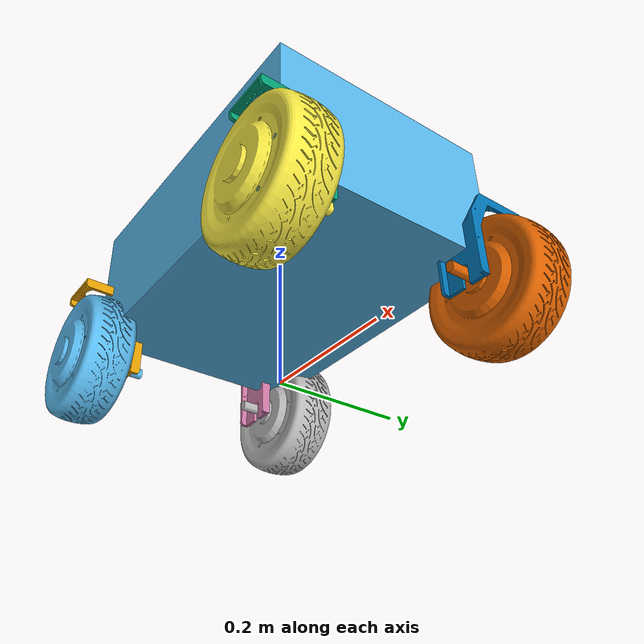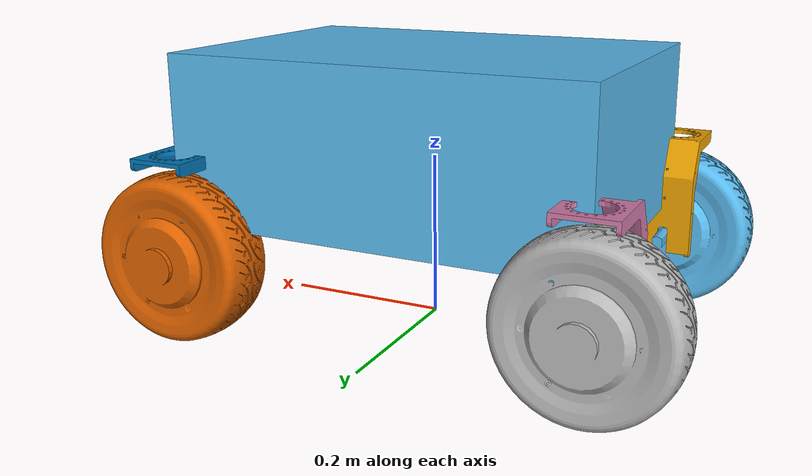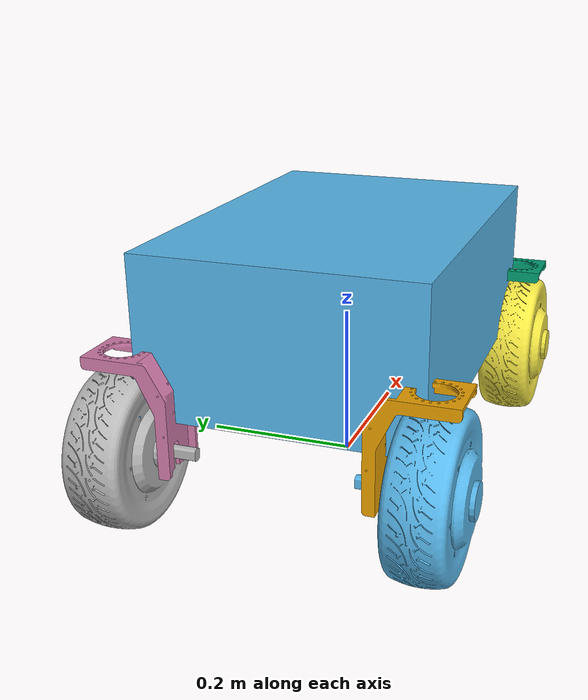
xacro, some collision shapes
<?xml version="1.0" ?>
<!-- |    Complete Robot Description for Agilex Aloha                                     | -->
<!-- |    This file includes the base robot structure and both arms                    | -->
<robot name="Agilex_Aloha_V1" xmlns:xacro="http://www.ros.org/wiki/xacro">

	<xacro:arg name="type" default="ranger_mini"/>

	<xacro:if value="${'$(arg type)' == 'ranger_mini'}">
		<xacro:include filename="$(find agilex_aloha_description)/xacro/base/ranger_mini.xacro"/>
	</xacro:if>

	<xacro:if value="${'$(arg type)' == 'tracer'}">
		<xacro:include filename="$(find agilex_aloha_description)/xacro/base/tracer.xacro"/>
	</xacro:if>

	<xacro:if value="${'$(arg type)' == 'tracer_v2'}">
		<xacro:include filename="$(find agilex_aloha_description)/xacro/base/tracer_v2.xacro"/>
	</xacro:if>

	<xacro:if value="${'$(arg type)' == 'body_v1'}">
		<link name="base_footprint"/>
		<link name="left_base_link"/>
		<link name="right_base_link"/>
		<xacro:include filename="$(find agilex_aloha_description)/xacro/body/v1.xacro"/>
	</xacro:if>

	<xacro:if value="${'$(arg type)' == 'body_v2'}">
		<link name="base_footprint"/>
		<link name="left_base_link"/>
		<link name="right_base_link"/>
		<xacro:include filename="$(find agilex_aloha_description)/xacro/body/v2.xacro"/>
	</xacro:if>

</robot>

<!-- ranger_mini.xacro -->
<robot name="ranger_mini_v3" xmlns:xacro="http://ros.org/wiki/xacro">

  <link name="base_link"/>
  <joint name="base_link_joint" type="fixed">
    <parent link="base_link"/>
    <child link="base"/>
    <origin xyz="0 0 0.33"/>
  </joint>

  <link name="base">
    <inertial>
      <origin xyz="-0.0242698272228022 -0.0030308024613212 0.0544267444673498"/>
      <mass value="10"/>
      <inertia ixx="0.1354" ixy="0.0" ixz="0.0" iyy="0.2417" iyz="0.0" izz="0.3085"/>
    </inertial>
    <visual>
      <geometry>
        <mesh filename="file://$(find agilex_aloha_description)/meshes/ranger_mini/base.obj"/>
      </geometry>
    </visual>
    <collision>
      <origin xyz="0 0 -0.1"/>
      <geometry>
        <box size="0.5 0.35 0.2"/>
      </geometry>
    </collision>
  </link>

  <link name="fr_steering_wheel_link">
    <inertial>
      <origin xyz="1.8493E-05 1.2713E-06 0.043679"/>
      <mass value="1"/>
      <inertia
          ixx="0.0063625"
          ixy="-1.0581E-07"
          ixz="-4.0831E-07"
          iyy="0.006363"
          iyz="-3.4944E-08"
          izz="0.010465"/>
    </inertial>
    <visual>
      <geometry>
        <mesh filename="file://$(find agilex_aloha_description)/meshes/ranger_mini/steering_wheel.obj"/>
      </geometry>
    </visual>
  </link>

  <joint name="fr_steering_joint" type="revolute">
    <origin xyz="0.241 -0.185 -0.115"/>
    <parent link="base"/>
    <child link="fr_steering_wheel_link"/>
    <axis xyz="0 0 1"/>
    <limit effort="5" velocity="6.28" lower="-3.14159" upper="3.14159"/>
  </joint>

  <link name="fr_wheel_link">
    <inertial>
      <mass value="8"/>
      <inertia ixx="0.02047" ixy="0.0" ixz="0.0" iyy="0.02047" iyz="0.0" izz="0.0324"/>
    </inertial>
    <visual>
      <origin xyz="0 0 0" rpy="3.14 0 0"/>
      <geometry>
        <mesh filename="file://$(find agilex_aloha_description)/meshes/ranger_mini/wheel.obj" />
      </geometry>
    </visual>
    <collision>
      <origin xyz="0 0 -0.005" rpy="1.57 0 0"/>
      <geometry>
        <cylinder length="0.08" radius="0.09"/>
      </geometry>
    </collision>
  </link>

  <joint name="fr_wheel" type="continuous">
    <origin xyz="0.0 0.0 -0.12"/>
    <parent link="fr_steering_wheel_link"/>
    <child link="fr_wheel_link"/>
    <axis xyz="0 1 0"/>
  </joint>

  <link name="fl_steering_wheel_link">
    <inertial>
      <origin xyz="-0.0017956 -9.6304E-08 0.043642"/>
      <mass value="1"/>
      <inertia
          ixx="0.0063695"
          ixy="-2.1067E-08"
          ixz="-0.00016867"
          iyy="0.006363"
          iyz="-1.0301E-08"
          izz="0.010458"/>
    </inertial>
    <visual>
      <origin rpy="0 0 3.14"/>
      <geometry>
        <mesh filename="file://$(find agilex_aloha_description)/meshes/ranger_mini/steering_wheel.obj"/>
      </geometry>
    </visual>
  </link>

  <joint name="fl_steering_joint" type="revolute">
    <origin xyz="0.241 0.185 -0.115"/>
    <parent link="base"/>
    <child link="fl_steering_wheel_link"/>
    <axis xyz="0 0 1"/>
    <limit effort="5" velocity="6.28" lower="-3.14159" upper="3.14159"/>
  </joint>

  <link name="fl_wheel_link">
    <inertial>
      <mass value="8"/>
      <inertia ixx="0.02047" ixy="0.0" ixz="0.0" iyy="0.02047" iyz="0.0" izz="0.0324"/>
    </inertial>
    <visual>
      <geometry>
        <mesh filename="file://$(find agilex_aloha_description)/meshes/ranger_mini/wheel.obj" />
      </geometry>
    </visual>
    <collision>
      <origin xyz="0 0 -0.005" rpy="1.57 0 0"/>
      <geometry>
        <cylinder length="0.08" radius="0.09"/>
      </geometry>
    </collision>
  </link>

  <joint name="fl_wheel" type="continuous">
    <origin xyz="0.0 0.0 -0.12"/>
    <parent link="fl_steering_wheel_link"/>
    <child link="fl_wheel_link"/>
    <axis xyz="0 1 0"/>
  </joint>

  <link name="rl_steering_wheel_link">
    <inertial>
      <origin xyz="-0.00017093 6.1255E-08 0.043678"/>
      <mass value="1"/>
      <inertia
          ixx="0.0063627"
          ixy="-2.1069E-08"
          ixz="-1.587E-05"
          iyy="0.006363"
          iyz="9.3201E-09"
          izz="0.010465"/>
    </inertial>
    <visual>
      <origin rpy="0 0 3.14"/>
      <geometry>
        <mesh filename="file://$(find agilex_aloha_description)/meshes/ranger_mini/steering_wheel.obj"/>
      </geometry>
    </visual>
  </link>

  <joint name="rl_steering_joint" type="revolute">
    <origin xyz="-0.253 0.185 -0.115"/>
    <parent link="base"/>
    <child link="rl_steering_wheel_link"/>
    <axis xyz="0 0 1"/>
    <limit effort="5" velocity="6.28" lower="-3.14159" upper="3.14159"/>
  </joint>

  <link name="rl_wheel_link">
    <inertial>
      <mass value="8"/>
      <inertia ixx="0.02047" ixy="0.0" ixz="0.0" iyy="0.02047" iyz="0.0" izz="0.0324"/>
    </inertial>
    <visual>
      <geometry>
        <mesh filename="file://$(find agilex_aloha_description)/meshes/ranger_mini/wheel.obj" />
      </geometry>
    </visual>
    <collision>
      <origin xyz="0.00 0.00 -0.005" rpy="1.57 0 0"/>
      <geometry>
        <cylinder length="0.08" radius="0.09"/>
      </geometry>
    </collision>
  </link>

  <joint name="rl_wheel" type="continuous">
    <origin xyz="0.0 0.0 -0.12 "/>
    <parent link="rl_steering_wheel_link"/>
    <child link="rl_wheel_link"/>
    <axis xyz="0 1 0"/>
  </joint>

  <link name="rr_steering_wheel_link">
    <inertial>
      <origin xyz="-0.00017093 -6.1255E-08 0.043678"/>
      <mass value="1"/>
      <inertia
          ixx="0.0063627"
          ixy="-2.1069E-08"
          ixz="-1.587E-05"
          iyy="0.006363"
          iyz="9.3201E-09"
          izz="0.010465"/>
    </inertial>
    <visual>
      <geometry>
        <mesh filename="file://$(find agilex_aloha_description)/meshes/ranger_mini/steering_wheel.obj"/>
      </geometry>
    </visual>
  </link>

  <joint name="rr_steering_joint" type="revolute">
    <origin xyz="-0.253 -0.185 -0.115"/>
    <parent link="base"/>
    <child link="rr_steering_wheel_link"/>
    <axis xyz="0 0 1"/>
    <limit effort="5" velocity="6.28" lower="-3.14159" upper="3.14159"/>
  </joint>

  <link name="rr_wheel_link">
    <inertial>
      <mass value="8"/>
      <inertia ixx="0.02047" ixy="0.0" ixz="0.0" iyy="0.02047" iyz="0.0" izz="0.0324"/>
    </inertial>
    <visual>
      <origin rpy="3.14 0 0"/>
      <geometry>
        <mesh filename="file://$(find agilex_aloha_description)/meshes/ranger_mini/wheel.obj" />
      </geometry>
    </visual>
    <collision>
      <origin xyz="0.00 0 -0.005" rpy="1.57 0 0"/>
      <geometry>
        <cylinder length="0.08" radius="0.09"/>
      </geometry>
    </collision>
  </link>

  <joint name="rr_wheel" type="continuous">
    <origin xyz="0.0 0.0 -0.12 "/>
    <parent link="rr_steering_wheel_link"/>
    <child link="rr_wheel_link"/>
    <axis xyz="0 1 0"/>
  </joint>

</robot>
